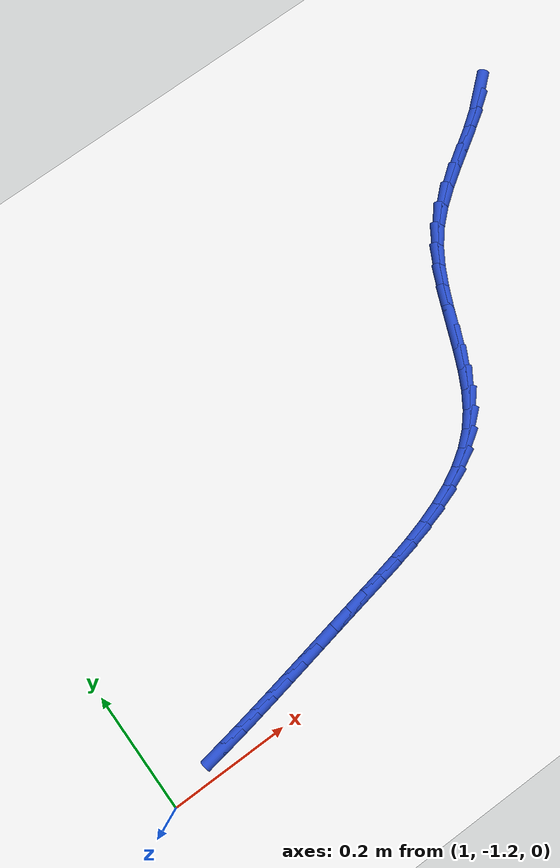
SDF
<sdf version="1.6">
 <world name="default">
  <model name="ground_plane">
   <static>1</static>
   <link name="link">
    <collision name="collision">
     <geometry><plane><normal>0 0 1</normal><size>100 100</size></plane></geometry>
     <surface><friction><ode><mu>100</mu><mu2>50</mu2></ode></friction></surface>
    </collision>
    <visual name="visual">
     <cast_shadows>0</cast_shadows>
     <geometry><plane><normal>0 0 1</normal><size>100 100</size></plane></geometry>
     <material>
      <script><uri>file://media/materials/scripts/gazebo.material</uri><name>Gazebo/WhiteGlow</name></script>
     </material>
    </visual>
   </link>
  </model>
  <model name="line">
   <link name="link_123">
    <pose>2.0690360309572458 -0.5589809767473847 0.01 0 1.57 0.7210464269539415</pose>
    <collision name="collision">
     <geometry><cylinder><radius>0.01</radius><length>0.08</length></cylinder></geometry>
    </collision>
    <visual name="visual">
     <material>
      <script><name>Gazebo/Blue</name><uri>file://media/materials/scripts/gazebo.material</uri></script>
     </material>
     <geometry><cylinder><radius>0.01</radius><length>0.08</length></cylinder></geometry>
    </visual>
   </link>
   <link name="link_124">
    <pose>2.0446986991811005 -0.5803715684907887 0.01 0 1.57 0.6298985672241392</pose>
    <collision name="collision">
     <geometry><cylinder><radius>0.01</radius><length>0.08</length></cylinder></geometry>
    </collision>
    <visual name="visual">
     <material>
      <script><name>Gazebo/Blue</name><uri>file://media/materials/scripts/gazebo.material</uri></script>
     </material>
     <geometry><cylinder><radius>0.01</radius><length>0.08</length></cylinder></geometry>
    </visual>
   </link>
   <link name="link_125">
    <pose>2.0172887073428147 -0.6003523392963832 0.01 0 1.57 0.581822787608231</pose>
    <collision name="collision">
     <geometry><cylinder><radius>0.01</radius><length>0.08</length></cylinder></geometry>
    </collision>
    <visual name="visual">
     <material>
      <script><name>Gazebo/Blue</name><uri>file://media/materials/scripts/gazebo.material</uri></script>
     </material>
     <geometry><cylinder><radius>0.01</radius><length>0.08</length></cylinder></geometry>
    </visual>
   </link>
   <link name="link_126">
    <pose>1.9879455628399567 -0.6196535783423103 0.01 0 1.57 0.5708288973236528</pose>
    <collision name="collision">
     <geometry><cylinder><radius>0.01</radius><length>0.08</length></cylinder></geometry>
    </collision>
    <visual name="visual">
     <material>
      <script><name>Gazebo/Blue</name><uri>file://media/materials/scripts/gazebo.material</uri></script>
     </material>
     <geometry><cylinder><radius>0.01</radius><length>0.08</length></cylinder></geometry>
    </visual>
   </link>
   <link name="link_127">
    <pose>1.9578087730700928 -0.6390055748067139 0.01 0 1.57 0.594306755101026</pose>
    <collision name="collision">
     <geometry><cylinder><radius>0.01</radius><length>0.08</length></cylinder></geometry>
    </collision>
    <visual name="visual">
     <material>
      <script><name>Gazebo/Blue</name><uri>file://media/materials/scripts/gazebo.material</uri></script>
     </material>
     <geometry><cylinder><radius>0.01</radius><length>0.08</length></cylinder></geometry>
    </visual>
   </link>
   <link name="link_128">
    <pose>1.9280178454307895 -0.6591386178677376 0.01 0 1.57 0.6528232690436803</pose>
    <collision name="collision">
     <geometry><cylinder><radius>0.01</radius><length>0.08</length></cylinder></geometry>
    </collision>
    <visual name="visual">
     <material>
      <script><name>Gazebo/Blue</name><uri>file://media/materials/scripts/gazebo.material</uri></script>
     </material>
     <geometry><cylinder><radius>0.01</radius><length>0.08</length></cylinder></geometry>
    </visual>
   </link>
   <link name="link_129">
    <pose>1.8997122873196148 -0.6807829967035249 0.01 0 1.57 0.7492066416639062</pose>
    <collision name="collision">
     <geometry><cylinder><radius>0.01</radius><length>0.08</length></cylinder></geometry>
    </collision>
    <visual name="visual">
     <material>
      <script><name>Gazebo/Blue</name><uri>file://media/materials/scripts/gazebo.material</uri></script>
     </material>
     <geometry><cylinder><radius>0.01</radius><length>0.08</length></cylinder></geometry>
    </visual>
   </link>
   <link name="link_130">
    <pose>1.8740316061341349 -0.7046690004922189 0.01 0 1.57 0.8800764682746293</pose>
    <collision name="collision">
     <geometry><cylinder><radius>0.01</radius><length>0.08</length></cylinder></geometry>
    </collision>
    <visual name="visual">
     <material>
      <script><name>Gazebo/Blue</name><uri>file://media/materials/scripts/gazebo.material</uri></script>
     </material>
     <geometry><cylinder><radius>0.01</radius><length>0.08</length></cylinder></geometry>
    </visual>
   </link>
   <link name="link_131">
    <pose>1.851939581175148 -0.7313970921614102 0.01 0 1.57 1.000405423589607</pose>
    <collision name="collision">
     <geometry><cylinder><radius>0.01</radius><length>0.08</length></cylinder></geometry>
    </collision>
    <visual name="visual">
     <material>
      <script><name>Gazebo/Blue</name><uri>file://media/materials/scripts/gazebo.material</uri></script>
     </material>
     <geometry><cylinder><radius>0.01</radius><length>0.08</length></cylinder></geometry>
    </visual>
   </link>
   <link name="link_132">
    <pose>1.833168275525385 -0.7606577543835221 0.01 0 1.57 1.0893478343359184</pose>
    <collision name="collision">
     <geometry><cylinder><radius>0.01</radius><length>0.08</length></cylinder></geometry>
    </collision>
    <visual name="visual">
     <material>
      <script><name>Gazebo/Blue</name><uri>file://media/materials/scripts/gazebo.material</uri></script>
     </material>
     <geometry><cylinder><radius>0.01</radius><length>0.08</length></cylinder></geometry>
    </visual>
   </link>
   <link name="link_133">
    <pose>1.8169228712561831 -0.7917522151388979 0.01 0 1.57 1.1475888307335422</pose>
    <collision name="collision">
     <geometry><cylinder><radius>0.01</radius><length>0.08</length></cylinder></geometry>
    </collision>
    <visual name="visual">
     <material>
      <script><name>Gazebo/Blue</name><uri>file://media/materials/scripts/gazebo.material</uri></script>
     </material>
     <geometry><cylinder><radius>0.01</radius><length>0.08</length></cylinder></geometry>
    </visual>
   </link>
   <link name="link_134">
    <pose>1.8024065594152554 -0.8239802314585231 0.01 0 1.57 1.1766538973278238</pose>
    <collision name="collision">
     <geometry><cylinder><radius>0.01</radius><length>0.08</length></cylinder></geometry>
    </collision>
    <visual name="visual">
     <material>
      <script><name>Gazebo/Blue</name><uri>file://media/materials/scripts/gazebo.material</uri></script>
     </material>
     <geometry><cylinder><radius>0.01</radius><length>0.08</length></cylinder></geometry>
    </visual>
   </link>
   <link name="link_135">
    <pose>1.788822531050321 -0.8566415603733839 0.01 0 1.57 1.1772977024499813</pose>
    <collision name="collision">
     <geometry><cylinder><radius>0.01</radius><length>0.08</length></cylinder></geometry>
    </collision>
    <visual name="visual">
     <material>
      <script><name>Gazebo/Blue</name><uri>file://media/materials/scripts/gazebo.material</uri></script>
     </material>
     <geometry><cylinder><radius>0.01</radius><length>0.08</length></cylinder></geometry>
    </visual>
   </link>
   <link name="link_136">
    <pose>1.775373977209093 -0.8890359589144651 0.01 0 1.57 1.1487990949469036</pose>
    <collision name="collision">
     <geometry><cylinder><radius>0.01</radius><length>0.08</length></cylinder></geometry>
    </collision>
    <visual name="visual">
     <material>
      <script><name>Gazebo/Blue</name><uri>file://media/materials/scripts/gazebo.material</uri></script>
     </material>
     <geometry><cylinder><radius>0.01</radius><length>0.08</length></cylinder></geometry>
    </visual>
   </link>
   <link name="link_137">
    <pose>1.7612640889392892 -0.9204631841127523 0.01 0 1.57 1.088822130879252</pose>
    <collision name="collision">
     <geometry><cylinder><radius>0.01</radius><length>0.08</length></cylinder></geometry>
    </collision>
    <visual name="visual">
     <material>
      <script><name>Gazebo/Blue</name><uri>file://media/materials/scripts/gazebo.material</uri></script>
     </material>
     <geometry><cylinder><radius>0.01</radius><length>0.08</length></cylinder></geometry>
    </visual>
   </link>
   <link name="link_138">
    <pose>1.7456960572886244 -0.9502229929992319 0.01 0 1.57 0.9939570710690537</pose>
    <collision name="collision">
     <geometry><cylinder><radius>0.01</radius><length>0.08</length></cylinder></geometry>
    </collision>
    <visual name="visual">
     <material>
      <script><name>Gazebo/Blue</name><uri>file://media/materials/scripts/gazebo.material</uri></script>
     </material>
     <geometry><cylinder><radius>0.01</radius><length>0.08</length></cylinder></geometry>
    </visual>
   </link>
   <link name="link_139">
    <pose>1.7278730733048164 -0.977615142604888 0.01 0 1.57 0.8621186825572413</pose>
    <collision name="collision">
     <geometry><cylinder><radius>0.01</radius><length>0.08</length></cylinder></geometry>
    </collision>
    <visual name="visual">
     <material>
      <script><name>Gazebo/Blue</name><uri>file://media/materials/scripts/gazebo.material</uri></script>
     </material>
     <geometry><cylinder><radius>0.01</radius><length>0.08</length></cylinder></geometry>
    </visual>
   </link>
   <link name="link_140">
    <pose>1.7070116492734855 -1.001950940401241 0.01 0 1.57 0.715864988335337</pose>
    <collision name="collision">
     <geometry><cylinder><radius>0.01</radius><length>0.08</length></cylinder></geometry>
    </collision>
    <visual name="visual">
     <material>
      <script><name>Gazebo/Blue</name><uri>file://media/materials/scripts/gazebo.material</uri></script>
     </material>
     <geometry><cylinder><radius>0.01</radius><length>0.08</length></cylinder></geometry>
    </visual>
   </link>
   <link name="link_141">
    <pose>1.682833979943008 -1.0229801557547575 0.01 0 1.57 0.5868468286717661</pose>
    <collision name="collision">
     <geometry><cylinder><radius>0.01</radius><length>0.08</length></cylinder></geometry>
    </collision>
    <visual name="visual">
     <material>
      <script><name>Gazebo/Blue</name><uri>file://media/materials/scripts/gazebo.material</uri></script>
     </material>
     <geometry><cylinder><radius>0.01</radius><length>0.08</length></cylinder></geometry>
    </visual>
   </link>
   <link name="link_142">
    <pose>1.655712198367347 -1.0410160997840068 0.01 0 1.57 0.4788425258152252</pose>
    <collision name="collision">
     <geometry><cylinder><radius>0.01</radius><length>0.08</length></cylinder></geometry>
    </collision>
    <visual name="visual">
     <material>
      <script><name>Gazebo/Blue</name><uri>file://media/materials/scripts/gazebo.material</uri></script>
     </material>
     <geometry><cylinder><radius>0.01</radius><length>0.08</length></cylinder></geometry>
    </visual>
   </link>
   <link name="link_143">
    <pose>1.6260611808551486 -1.056409144984656 0.01 0 1.57 0.39116296006858964</pose>
    <collision name="collision">
     <geometry><cylinder><radius>0.01</radius><length>0.08</length></cylinder></geometry>
    </collision>
    <visual name="visual">
     <material>
      <script><name>Gazebo/Blue</name><uri>file://media/materials/scripts/gazebo.material</uri></script>
     </material>
     <geometry><cylinder><radius>0.01</radius><length>0.08</length></cylinder></geometry>
    </visual>
   </link>
   <link name="link_144">
    <pose>1.5942958037150612 -1.0695096638523731 0.01 0 1.57 0.32184230125161806</pose>
    <collision name="collision">
     <geometry><cylinder><radius>0.01</radius><length>0.08</length></cylinder></geometry>
    </collision>
    <visual name="visual">
     <material>
      <script><name>Gazebo/Blue</name><uri>file://media/materials/scripts/gazebo.material</uri></script>
     </material>
     <geometry><cylinder><radius>0.01</radius><length>0.08</length></cylinder></geometry>
    </visual>
   </link>
   <link name="link_145">
    <pose>1.560830943255728 -1.0806680288828259 0.01 0 1.57 0.2686465762460319</pose>
    <collision name="collision">
     <geometry><cylinder><radius>0.01</radius><length>0.08</length></cylinder></geometry>
    </collision>
    <visual name="visual">
     <material>
      <script><name>Gazebo/Blue</name><uri>file://media/materials/scripts/gazebo.material</uri></script>
     </material>
     <geometry><cylinder><radius>0.01</radius><length>0.08</length></cylinder></geometry>
    </visual>
   </link>
   <link name="link_146">
    <pose>1.526081475785799 -1.090234612571682 0.01 0 1.57 0.22960541444570512</pose>
    <collision name="collision">
     <geometry><cylinder><radius>0.01</radius><length>0.08</length></cylinder></geometry>
    </collision>
    <visual name="visual">
     <material>
      <script><name>Gazebo/Blue</name><uri>file://media/materials/scripts/gazebo.material</uri></script>
     </material>
     <geometry><cylinder><radius>0.01</radius><length>0.08</length></cylinder></geometry>
    </visual>
   </link>
   <link name="link_147">
    <pose>1.4904622776139194 -1.0985597874146082 0.01 0 1.57 0.20323475971232452</pose>
    <collision name="collision">
     <geometry><cylinder><radius>0.01</radius><length>0.08</length></cylinder></geometry>
    </collision>
    <visual name="visual">
     <material>
      <script><name>Gazebo/Blue</name><uri>file://media/materials/scripts/gazebo.material</uri></script>
     </material>
     <geometry><cylinder><radius>0.01</radius><length>0.08</length></cylinder></geometry>
    </visual>
   </link>
   <link name="link_148">
    <pose>1.454388225048736 -1.105993925907274 0.01 0 1.57 0.1886119086963417</pose>
    <collision name="collision">
     <geometry><cylinder><radius>0.01</radius><length>0.08</length></cylinder></geometry>
    </collision>
    <visual name="visual">
     <material>
      <script><name>Gazebo/Blue</name><uri>file://media/materials/scripts/gazebo.material</uri></script>
     </material>
     <geometry><cylinder><radius>0.01</radius><length>0.08</length></cylinder></geometry>
    </visual>
   </link>
   <link name="link_149">
    <pose>1.4182741943988946 -1.1128874005453453 0.01 0 1.57 0.1852921751475796</pose>
    <collision name="collision">
     <geometry><cylinder><radius>0.01</radius><length>0.08</length></cylinder></geometry>
    </collision>
    <visual name="visual">
     <material>
      <script><name>Gazebo/Blue</name><uri>file://media/materials/scripts/gazebo.material</uri></script>
     </material>
     <geometry><cylinder><radius>0.01</radius><length>0.08</length></cylinder></geometry>
    </visual>
   </link>
   <link name="link_150">
    <pose>1.3825308472886255 -1.1195872144835552 0.01 0 1.57 0.1882308847387243</pose>
    <collision name="collision">
     <geometry><cylinder><radius>0.01</radius><length>0.08</length></cylinder></geometry>
    </collision>
    <visual name="visual">
     <material>
      <script><name>Gazebo/Blue</name><uri>file://media/materials/scripts/gazebo.material</uri></script>
     </material>
     <geometry><cylinder><radius>0.01</radius><length>0.08</length></cylinder></geometry>
    </visual>
   </link>
   <link name="link_151">
    <pose>1.34737348751124 -1.1262841961618384 0.01 0 1.57 0.1901727207183144</pose>
    <collision name="collision">
     <geometry><cylinder><radius>0.01</radius><length>0.08</length></cylinder></geometry>
    </collision>
    <visual name="visual">
     <material>
      <script><name>Gazebo/Blue</name><uri>file://media/materials/scripts/gazebo.material</uri></script>
     </material>
     <geometry><cylinder><radius>0.01</radius><length>0.08</length></cylinder></geometry>
    </visual>
   </link>
   <link name="link_152">
    <pose>1.3127437390766556 -1.1329503864654291 0.01 0 1.57 0.19049155267408766</pose>
    <collision name="collision">
     <geometry><cylinder><radius>0.01</radius><length>0.08</length></cylinder></geometry>
    </collision>
    <visual name="visual">
     <material>
      <script><name>Gazebo/Blue</name><uri>file://media/materials/scripts/gazebo.material</uri></script>
     </material>
     <geometry><cylinder><radius>0.01</radius><length>0.08</length></cylinder></geometry>
    </visual>
   </link>
   <link name="link_153">
    <pose>1.2785627866910612 -1.1395414865074884 0.01 0 1.57 0.18912112013127447</pose>
    <collision name="collision">
     <geometry><cylinder><radius>0.01</radius><length>0.08</length></cylinder></geometry>
    </collision>
    <visual name="visual">
     <material>
      <script><name>Gazebo/Blue</name><uri>file://media/materials/scripts/gazebo.material</uri></script>
     </material>
     <geometry><cylinder><radius>0.01</radius><length>0.08</length></cylinder></geometry>
    </visual>
   </link>
   <link name="link_154">
    <pose>1.2447518150606471 -1.1460131974011774 0.01 0 1.57 0.18601243117767916</pose>
    <collision name="collision">
     <geometry><cylinder><radius>0.01</radius><length>0.08</length></cylinder></geometry>
    </collision>
    <visual name="visual">
     <material>
      <script><name>Gazebo/Blue</name><uri>file://media/materials/scripts/gazebo.material</uri></script>
     </material>
     <geometry><cylinder><radius>0.01</radius><length>0.08</length></cylinder></geometry>
    </visual>
   </link>
   <link name="link_155">
    <pose>1.2112320088916029 -1.152321220259656 0.01 0 1.57 0.18113587169322182</pose>
    <collision name="collision">
     <geometry><cylinder><radius>0.01</radius><length>0.08</length></cylinder></geometry>
    </collision>
    <visual name="visual">
     <material>
      <script><name>Gazebo/Blue</name><uri>file://media/materials/scripts/gazebo.material</uri></script>
     </material>
     <geometry><cylinder><radius>0.01</radius><length>0.08</length></cylinder></geometry>
    </visual>
   </link>
   <link name="link_156">
    <pose>1.177924552890118 -1.1584212561960856 0.01 0 1.57 0.1744830137446192</pose>
    <collision name="collision">
     <geometry><cylinder><radius>0.01</radius><length>0.08</length></cylinder></geometry>
    </collision>
    <visual name="visual">
     <material>
      <script><name>Gazebo/Blue</name><uri>file://media/materials/scripts/gazebo.material</uri></script>
     </material>
     <geometry><cylinder><radius>0.01</radius><length>0.08</length></cylinder></geometry>
    </visual>
   </link>
   <link name="link_157">
    <pose>1.1447506317623823 -1.1642690063236274 0.01 0 1.57 0.1660680210434472</pose>
    <collision name="collision">
     <geometry><cylinder><radius>0.01</radius><length>0.08</length></cylinder></geometry>
    </collision>
    <visual name="visual">
     <material>
      <script><name>Gazebo/Blue</name><uri>file://media/materials/scripts/gazebo.material</uri></script>
     </material>
     <geometry><cylinder><radius>0.01</radius><length>0.08</length></cylinder></geometry>
    </visual>
   </link>
   <link name="link_158">
    <pose>1.1116314302145867 -1.169820171755441 0.01 0 1.57 0.1559285458727985</pose>
    <collision name="collision">
     <geometry><cylinder><radius>0.01</radius><length>0.08</length></cylinder></geometry>
    </collision>
    <visual name="visual">
     <material>
      <script><name>Gazebo/Blue</name><uri>file://media/materials/scripts/gazebo.material</uri></script>
     </material>
     <geometry><cylinder><radius>0.01</radius><length>0.08</length></cylinder></geometry>
    </visual>
   </link>
  </model>
 </world>
</sdf>
